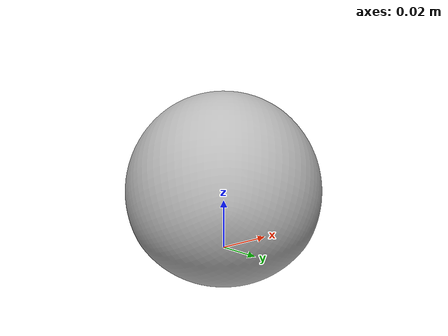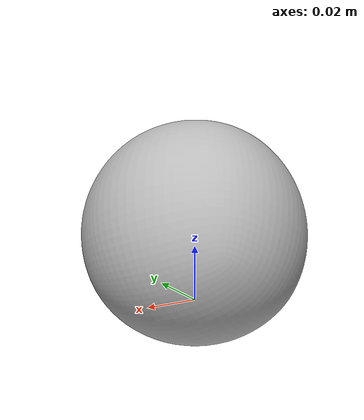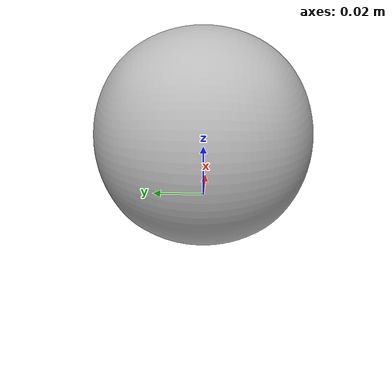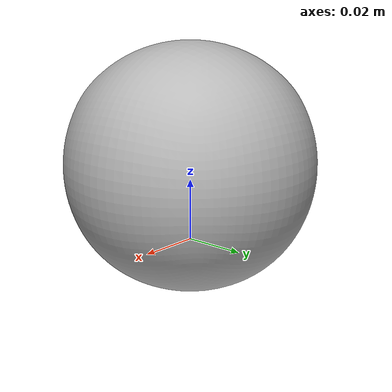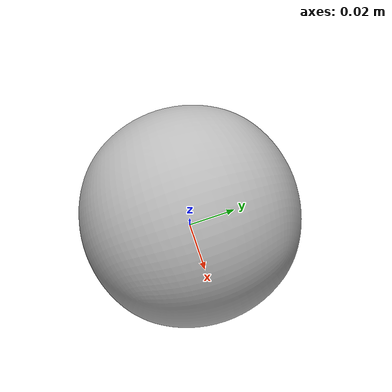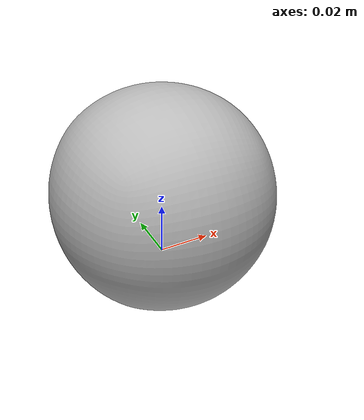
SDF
<?xml version="1.0"?>
<sdf version="1.7">
  <model name="bball">
    <link name="base_link">
      <inertial>
        <pose>0 0 0.025 0 0 0 </pose>
        <mass>0.028</mass>
        <inertia>
          <ixx>1.17e-5</ixx>
          <ixy>0</ixy>
          <ixz>0</ixz>
          <iyy>1.9e-5</iyy>
          <iyz>0</iyz>
          <izz>1.9e-5</izz>
        </inertia>
      </inertial>
      <visual name="base_link_bball">
        <pose>0 0 0.025 0 0 0</pose>
        <geometry>
          <mesh>
            <uri>bball_small.obj</uri>
          </mesh>
        </geometry>
      </visual>
      <collision name="sphere_collision">
        <pose>0 0 0.025 0 0 0</pose>
        <geometry>
          <sphere>
            <radius>0.04</radius>
          </sphere>
        </geometry>
        <material>
          <diffuse>0 1 0 1.0</diffuse>
        </material>
      </collision>
    </link>
  </model>
</sdf>
